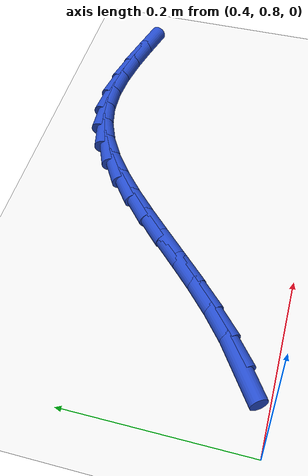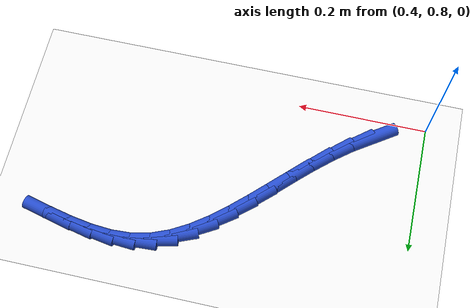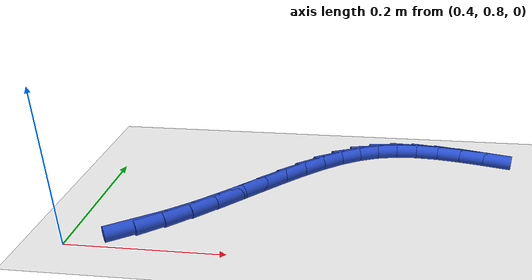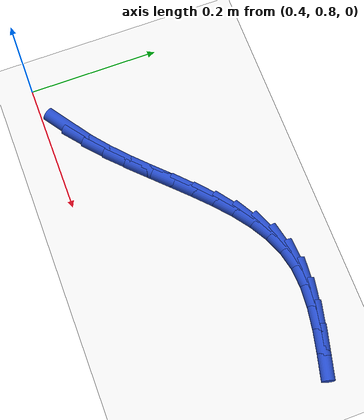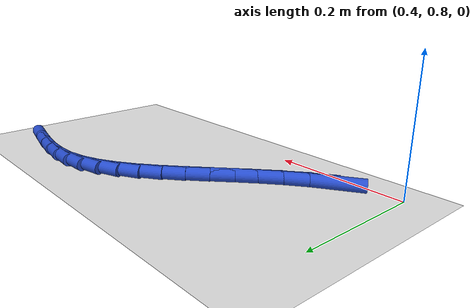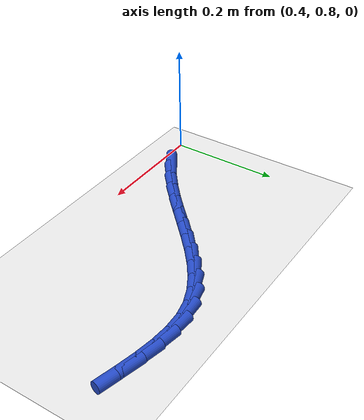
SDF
<sdf version="1.6">
 <world name="default">
  <model name="ground_plane">
   <static>1</static>
   <link name="link">
    <collision name="collision">
     <geometry><plane><normal>0 0 1</normal><size>100 100</size></plane></geometry>
     <surface><friction><ode><mu>100</mu><mu2>50</mu2></ode></friction></surface>
    </collision>
    <visual name="visual">
     <cast_shadows>0</cast_shadows>
     <geometry><plane><normal>0 0 1</normal><size>100 100</size></plane></geometry>
     <material>
      <script><uri>file://media/materials/scripts/gazebo.material</uri><name>Gazebo/WhiteGlow</name></script>
     </material>
    </visual>
   </link>
  </model>
  <model name="line">
   <link name="link_31">
    <pose>0.48029613920442826 0.8337717943392445 0.01 0 1.57 0.6013774213515227</pose>
    <collision name="collision">
     <geometry><cylinder><radius>0.01</radius><length>0.08</length></cylinder></geometry>
    </collision>
    <visual name="visual">
     <material>
      <script><name>Gazebo/Blue</name><uri>file://media/materials/scripts/gazebo.material</uri></script>
     </material>
     <geometry><cylinder><radius>0.01</radius><length>0.08</length></cylinder></geometry>
    </visual>
   </link>
   <link name="link_32">
    <pose>0.5095168344874591 0.853821890895861 0.01 0 1.57 0.6799014885389717</pose>
    <collision name="collision">
     <geometry><cylinder><radius>0.01</radius><length>0.08</length></cylinder></geometry>
    </collision>
    <visual name="visual">
     <material>
      <script><name>Gazebo/Blue</name><uri>file://media/materials/scripts/gazebo.material</uri></script>
     </material>
     <geometry><cylinder><radius>0.01</radius><length>0.08</length></cylinder></geometry>
    </visual>
   </link>
   <link name="link_33">
    <pose>0.5373598314949672 0.8763329110075202 0.01 0 1.57 0.7364725211335498</pose>
    <collision name="collision">
     <geometry><cylinder><radius>0.01</radius><length>0.08</length></cylinder></geometry>
    </collision>
    <visual name="visual">
     <material>
      <script><name>Gazebo/Blue</name><uri>file://media/materials/scripts/gazebo.material</uri></script>
     </material>
     <geometry><cylinder><radius>0.01</radius><length>0.08</length></cylinder></geometry>
    </visual>
   </link>
   <link name="link_34">
    <pose>0.5640963110389123 0.9005733215181787 0.01 0 1.57 0.7722344801264491</pose>
    <collision name="collision">
     <geometry><cylinder><radius>0.01</radius><length>0.08</length></cylinder></geometry>
    </collision>
    <visual name="visual">
     <material>
      <script><name>Gazebo/Blue</name><uri>file://media/materials/scripts/gazebo.material</uri></script>
     </material>
     <geometry><cylinder><radius>0.01</radius><length>0.08</length></cylinder></geometry>
    </visual>
   </link>
   <link name="link_35">
    <pose>0.5900010409240547 0.925804870737593 0.01 0 1.57 0.7880871660311061</pose>
    <collision name="collision">
     <geometry><cylinder><radius>0.01</radius><length>0.08</length></cylinder></geometry>
    </collision>
    <visual name="visual">
     <material>
      <script><name>Gazebo/Blue</name><uri>file://media/materials/scripts/gazebo.material</uri></script>
     </material>
     <geometry><cylinder><radius>0.01</radius><length>0.08</length></cylinder></geometry>
    </visual>
   </link>
   <link name="link_36">
    <pose>0.615348788955155 0.9512893069755195 0.01 0 1.57 0.7840706311847844</pose>
    <collision name="collision">
     <geometry><cylinder><radius>0.01</radius><length>0.08</length></cylinder></geometry>
    </collision>
    <visual name="visual">
     <material>
      <script><name>Gazebo/Blue</name><uri>file://media/materials/scripts/gazebo.material</uri></script>
     </material>
     <geometry><cylinder><radius>0.01</radius><length>0.08</length></cylinder></geometry>
    </visual>
   </link>
   <link name="link_37">
    <pose>0.6404143229369739 0.9762883785417159 0.01 0 1.57 0.7591388009299431</pose>
    <collision name="collision">
     <geometry><cylinder><radius>0.01</radius><length>0.08</length></cylinder></geometry>
    </collision>
    <visual name="visual">
     <material>
      <script><name>Gazebo/Blue</name><uri>file://media/materials/scripts/gazebo.material</uri></script>
     </material>
     <geometry><cylinder><radius>0.01</radius><length>0.08</length></cylinder></geometry>
    </visual>
   </link>
   <link name="link_38">
    <pose>0.6654724106742717 1.0000638337459382 0.01 0 1.57 0.7110362355102086</pose>
    <collision name="collision">
     <geometry><cylinder><radius>0.01</radius><length>0.08</length></cylinder></geometry>
    </collision>
    <visual name="visual">
     <material>
      <script><name>Gazebo/Blue</name><uri>file://media/materials/scripts/gazebo.material</uri></script>
     </material>
     <geometry><cylinder><radius>0.01</radius><length>0.08</length></cylinder></geometry>
    </visual>
   </link>
   <link name="link_39">
    <pose>0.690797819971809 1.0218774208979435 0.01 0 1.57 0.6363584933995068</pose>
    <collision name="collision">
     <geometry><cylinder><radius>0.01</radius><length>0.08</length></cylinder></geometry>
    </collision>
    <visual name="visual">
     <material>
      <script><name>Gazebo/Blue</name><uri>file://media/materials/scripts/gazebo.material</uri></script>
     </material>
     <geometry><cylinder><radius>0.01</radius><length>0.08</length></cylinder></geometry>
    </visual>
   </link>
   <link name="link_40">
    <pose>0.7166653186343466 1.0409908883074888 0.01 0 1.57 0.5311229275402451</pose>
    <collision name="collision">
     <geometry><cylinder><radius>0.01</radius><length>0.08</length></cylinder></geometry>
    </collision>
    <visual name="visual">
     <material>
      <script><name>Gazebo/Blue</name><uri>file://media/materials/scripts/gazebo.material</uri></script>
     </material>
     <geometry><cylinder><radius>0.01</radius><length>0.08</length></cylinder></geometry>
    </visual>
   </link>
   <link name="link_41">
    <pose>0.7433496744666444 1.0566659842843302 0.01 0 1.57 0.3924927095049018</pose>
    <collision name="collision">
     <geometry><cylinder><radius>0.01</radius><length>0.08</length></cylinder></geometry>
    </collision>
    <visual name="visual">
     <material>
      <script><name>Gazebo/Blue</name><uri>file://media/materials/scripts/gazebo.material</uri></script>
     </material>
     <geometry><cylinder><radius>0.01</radius><length>0.08</length></cylinder></geometry>
    </visual>
   </link>
   <link name="link_42">
    <pose>0.7711256552734631 1.068164457138225 0.01 0 1.57 0.22272313533182245</pose>
    <collision name="collision">
     <geometry><cylinder><radius>0.01</radius><length>0.08</length></cylinder></geometry>
    </collision>
    <visual name="visual">
     <material>
      <script><name>Gazebo/Blue</name><uri>file://media/materials/scripts/gazebo.material</uri></script>
     </material>
     <geometry><cylinder><radius>0.01</radius><length>0.08</length></cylinder></geometry>
    </visual>
   </link>
   <link name="link_43">
    <pose>0.8002636502832967 1.074763644184522 0.01 0 1.57 0.05439537003679868</pose>
    <collision name="collision">
     <geometry><cylinder><radius>0.01</radius><length>0.08</length></cylinder></geometry>
    </collision>
    <visual name="visual">
     <material>
      <script><name>Gazebo/Blue</name><uri>file://media/materials/scripts/gazebo.material</uri></script>
     </material>
     <geometry><cylinder><radius>0.01</radius><length>0.08</length></cylinder></geometry>
    </visual>
   </link>
   <link name="link_44">
    <pose>0.8308409002792685 1.0764285474065474 0.01 0 1.57 -0.07403487739956499</pose>
    <collision name="collision">
     <geometry><cylinder><radius>0.01</radius><length>0.08</length></cylinder></geometry>
    </collision>
    <visual name="visual">
     <material>
      <script><name>Gazebo/Blue</name><uri>file://media/materials/scripts/gazebo.material</uri></script>
     </material>
     <geometry><cylinder><radius>0.01</radius><length>0.08</length></cylinder></geometry>
    </visual>
   </link>
   <link name="link_45">
    <pose>0.8626696031833289 1.074067798495755 0.01 0 1.57 -0.16309145519003512</pose>
    <collision name="collision">
     <geometry><cylinder><radius>0.01</radius><length>0.08</length></cylinder></geometry>
    </collision>
    <visual name="visual">
     <material>
      <script><name>Gazebo/Blue</name><uri>file://media/materials/scripts/gazebo.material</uri></script>
     </material>
     <geometry><cylinder><radius>0.01</radius><length>0.08</length></cylinder></geometry>
    </visual>
   </link>
   <link name="link_46">
    <pose>0.8955427466088771 1.0686584234318646 0.01 0 1.57 -0.21837881261023018</pose>
    <collision name="collision">
     <geometry><cylinder><radius>0.01</radius><length>0.08</length></cylinder></geometry>
    </collision>
    <visual name="visual">
     <material>
      <script><name>Gazebo/Blue</name><uri>file://media/materials/scripts/gazebo.material</uri></script>
     </material>
     <geometry><cylinder><radius>0.01</radius><length>0.08</length></cylinder></geometry>
    </visual>
   </link>
   <link name="link_47">
    <pose>0.9292533181693131 1.0611774481945955 0.01 0 1.57 -0.24471287090163552</pose>
    <collision name="collision">
     <geometry><cylinder><radius>0.01</radius><length>0.08</length></cylinder></geometry>
    </collision>
    <visual name="visual">
     <material>
      <script><name>Gazebo/Blue</name><uri>file://media/materials/scripts/gazebo.material</uri></script>
     </material>
     <geometry><cylinder><radius>0.01</radius><length>0.08</length></cylinder></geometry>
    </visual>
   </link>
  </model>
 </world>
</sdf>
